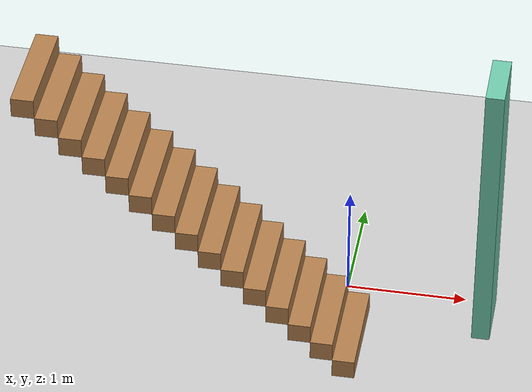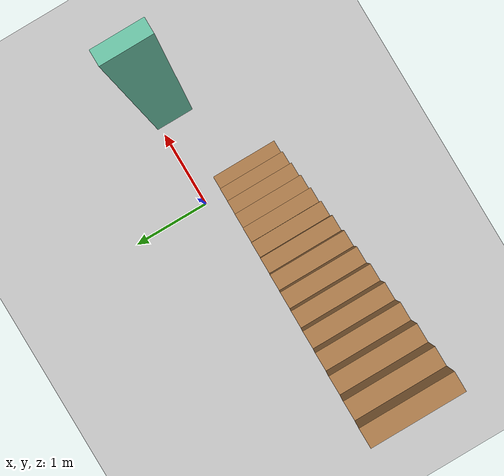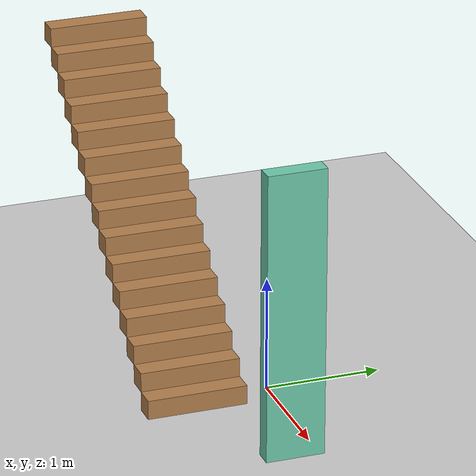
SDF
<sdf version="1.6">
 <world name="default">
  <model name="ground_plane">
   <static>1</static>
   <link name="link">
    <collision name="collision">
     <geometry><plane><normal>0 0 1</normal><size>100 100</size></plane></geometry>
     <surface><friction><ode><mu>100</mu><mu2>50</mu2></ode></friction></surface>
    </collision>
    <visual name="visual">
     <cast_shadows>0</cast_shadows>
     <geometry><plane><normal>0 0 1</normal><size>100 100</size></plane></geometry>
     <material>
      <script><uri>file://media/materials/scripts/gazebo.material</uri><name>Gazebo/Grey</name></script>
     </material>
    </visual>
   </link>
  </model>
  <model name="my_world">
   <link name="Stairs_3">
    <visual name="Stairs_3_Visual_0">
     <pose>-0.655687 -0.838968 0.083333 0 0 -1.5708</pose>
     <geometry><box><size>0.863121 0.182638 0.166667</size></box></geometry>
     <material>
      <script><uri>file://media/materials/scripts/gazebo.material</uri><name>Gazebo/Wood</name></script>
      <ambient>1 1 1 1</ambient>
      <diffuse>1 1 1 1</diffuse>
      <specular>0.2 0.2 0.2 1</specular>
      <emissive>0 0 0 1</emissive>
      <shader type="pixel"/>
     </material>
     <meta><layer>0</layer></meta>
    </visual>
    <visual name="Stairs_3_Visual_1">
     <pose>-0.838325 -0.838968 0.25 0 0 -1.5708</pose>
     <geometry><box><size>0.863121 0.182638 0.166667</size></box></geometry>
     <material>
      <script><uri>file://media/materials/scripts/gazebo.material</uri><name>Gazebo/Wood</name></script>
      <ambient>1 1 1 1</ambient>
      <diffuse>1 1 1 1</diffuse>
      <specular>0.2 0.2 0.2 1</specular>
      <emissive>0 0 0 1</emissive>
      <shader type="pixel"/>
     </material>
     <meta><layer>0</layer></meta>
    </visual>
    <visual name="Stairs_3_Visual_2">
     <pose>-1.02096 -0.838968 0.416667 0 0 -1.5708</pose>
     <geometry><box><size>0.863121 0.182638 0.166667</size></box></geometry>
     <material>
      <script><uri>file://media/materials/scripts/gazebo.material</uri><name>Gazebo/Wood</name></script>
      <ambient>1 1 1 1</ambient>
      <diffuse>1 1 1 1</diffuse>
      <specular>0.2 0.2 0.2 1</specular>
      <emissive>0 0 0 1</emissive>
      <shader type="pixel"/>
     </material>
     <meta><layer>0</layer></meta>
    </visual>
    <visual name="Stairs_3_Visual_8">
     <pose>-2.11679 -0.838967 1.41667 0 0 -1.5708</pose>
     <geometry><box><size>0.863121 0.182638 0.166667</size></box></geometry>
     <material>
      <script><uri>file://media/materials/scripts/gazebo.material</uri><name>Gazebo/Wood</name></script>
      <ambient>1 1 1 1</ambient>
      <diffuse>1 1 1 1</diffuse>
      <specular>0.2 0.2 0.2 1</specular>
      <emissive>0 0 0 1</emissive>
      <shader type="pixel"/>
     </material>
     <meta><layer>0</layer></meta>
    </visual>
    <visual name="Stairs_3_Visual_3">
     <pose>-1.2036 -0.838968 0.583333 0 0 -1.5708</pose>
     <geometry><box><size>0.863121 0.182638 0.166667</size></box></geometry>
     <material>
      <script><uri>file://media/materials/scripts/gazebo.material</uri><name>Gazebo/Wood</name></script>
      <ambient>1 1 1 1</ambient>
      <diffuse>1 1 1 1</diffuse>
      <specular>0.2 0.2 0.2 1</specular>
      <emissive>0 0 0 1</emissive>
      <shader type="pixel"/>
     </material>
     <meta><layer>0</layer></meta>
    </visual>
    <visual name="Stairs_3_Visual_4">
     <pose>-1.38624 -0.838968 0.75 0 0 -1.5708</pose>
     <geometry><box><size>0.863121 0.182638 0.166667</size></box></geometry>
     <material>
      <script><uri>file://media/materials/scripts/gazebo.material</uri><name>Gazebo/Wood</name></script>
      <ambient>1 1 1 1</ambient>
      <diffuse>1 1 1 1</diffuse>
      <specular>0.2 0.2 0.2 1</specular>
      <emissive>0 0 0 1</emissive>
      <shader type="pixel"/>
     </material>
     <meta><layer>0</layer></meta>
    </visual>
    <visual name="Stairs_3_Visual_5">
     <pose>-1.56888 -0.838968 0.916667 0 0 -1.5708</pose>
     <geometry><box><size>0.863121 0.182638 0.166667</size></box></geometry>
     <material>
      <script><uri>file://media/materials/scripts/gazebo.material</uri><name>Gazebo/Wood</name></script>
      <ambient>1 1 1 1</ambient>
      <diffuse>1 1 1 1</diffuse>
      <specular>0.2 0.2 0.2 1</specular>
      <emissive>0 0 0 1</emissive>
      <shader type="pixel"/>
     </material>
     <meta><layer>0</layer></meta>
    </visual>
    <visual name="Stairs_3_Visual_6">
     <pose>-1.75151 -0.838968 1.08333 0 0 -1.5708</pose>
     <geometry><box><size>0.863121 0.182638 0.166667</size></box></geometry>
     <material>
      <script><uri>file://media/materials/scripts/gazebo.material</uri><name>Gazebo/Wood</name></script>
      <ambient>1 1 1 1</ambient>
      <diffuse>1 1 1 1</diffuse>
      <specular>0.2 0.2 0.2 1</specular>
      <emissive>0 0 0 1</emissive>
      <shader type="pixel"/>
     </material>
     <meta><layer>0</layer></meta>
    </visual>
    <visual name="Stairs_3_Visual_7">
     <pose>-1.93415 -0.838968 1.25 0 0 -1.5708</pose>
     <geometry><box><size>0.863121 0.182638 0.166667</size></box></geometry>
     <material>
      <script><uri>file://media/materials/scripts/gazebo.material</uri><name>Gazebo/Wood</name></script>
      <ambient>1 1 1 1</ambient>
      <diffuse>1 1 1 1</diffuse>
      <specular>0.2 0.2 0.2 1</specular>
      <emissive>0 0 0 1</emissive>
      <shader type="pixel"/>
     </material>
     <meta><layer>0</layer></meta>
    </visual>
    <visual name="Stairs_3_Visual_9">
     <pose>-2.29942 -0.838967 1.58333 0 0 -1.5708</pose>
     <geometry><box><size>0.863121 0.182638 0.166667</size></box></geometry>
     <material>
      <script><uri>file://media/materials/scripts/gazebo.material</uri><name>Gazebo/Wood</name></script>
      <ambient>1 1 1 1</ambient>
      <diffuse>1 1 1 1</diffuse>
      <specular>0.2 0.2 0.2 1</specular>
      <emissive>0 0 0 1</emissive>
      <shader type="pixel"/>
     </material>
     <meta><layer>0</layer></meta>
    </visual>
    <visual name="Stairs_3_Visual_10">
     <pose>-2.48206 -0.838967 1.75 0 0 -1.5708</pose>
     <geometry><box><size>0.863121 0.182638 0.166667</size></box></geometry>
     <material>
      <script><uri>file://media/materials/scripts/gazebo.material</uri><name>Gazebo/Wood</name></script>
      <ambient>1 1 1 1</ambient>
      <diffuse>1 1 1 1</diffuse>
      <specular>0.2 0.2 0.2 1</specular>
      <emissive>0 0 0 1</emissive>
      <shader type="pixel"/>
     </material>
     <meta><layer>0</layer></meta>
    </visual>
    <visual name="Stairs_3_Visual_11">
     <pose>-2.6647 -0.838967 1.91667 0 0 -1.5708</pose>
     <geometry><box><size>0.863121 0.182638 0.166667</size></box></geometry>
     <material>
      <script><uri>file://media/materials/scripts/gazebo.material</uri><name>Gazebo/Wood</name></script>
      <ambient>1 1 1 1</ambient>
      <diffuse>1 1 1 1</diffuse>
      <specular>0.2 0.2 0.2 1</specular>
      <emissive>0 0 0 1</emissive>
      <shader type="pixel"/>
     </material>
     <meta><layer>0</layer></meta>
    </visual>
    <visual name="Stairs_3_Visual_12">
     <pose>-2.84734 -0.838967 2.08333 0 0 -1.5708</pose>
     <geometry><box><size>0.863121 0.182638 0.166667</size></box></geometry>
     <material>
      <script><uri>file://media/materials/scripts/gazebo.material</uri><name>Gazebo/Wood</name></script>
      <ambient>1 1 1 1</ambient>
      <diffuse>1 1 1 1</diffuse>
      <specular>0.2 0.2 0.2 1</specular>
      <emissive>0 0 0 1</emissive>
      <shader type="pixel"/>
     </material>
     <meta><layer>0</layer></meta>
    </visual>
    <visual name="Stairs_3_Visual_13">
     <pose>-3.02997 -0.838967 2.25 0 0 -1.5708</pose>
     <geometry><box><size>0.863121 0.182638 0.166667</size></box></geometry>
     <material>
      <script><uri>file://media/materials/scripts/gazebo.material</uri><name>Gazebo/Wood</name></script>
      <ambient>1 1 1 1</ambient>
      <diffuse>1 1 1 1</diffuse>
      <specular>0.2 0.2 0.2 1</specular>
      <emissive>0 0 0 1</emissive>
      <shader type="pixel"/>
     </material>
     <meta><layer>0</layer></meta>
    </visual>
    <visual name="Stairs_3_Visual_14">
     <pose>-3.21261 -0.838967 2.41667 0 0 -1.5708</pose>
     <geometry><box><size>0.863121 0.182638 0.166667</size></box></geometry>
     <material>
      <script><uri>file://media/materials/scripts/gazebo.material</uri><name>Gazebo/Wood</name></script>
      <ambient>1 1 1 1</ambient>
      <diffuse>1 1 1 1</diffuse>
      <specular>0.2 0.2 0.2 1</specular>
      <emissive>0 0 0 1</emissive>
      <shader type="pixel"/>
     </material>
     <meta><layer>0</layer></meta>
    </visual>
    <collision name="Stairs_3_Collision_13">
     <pose>-3.02997 -0.838967 2.25 0 0 -1.5708</pose>
     <geometry><box><size>0.863121 0.182638 0.166667</size></box></geometry>
     <surface>
      <friction>
       <ode><mu>1</mu><mu2>1</mu2><fdir1>0 0 0</fdir1><slip1>0</slip1><slip2>0</slip2></ode>
       <torsional>
        <coefficient>1</coefficient>
        <patch_radius>0</patch_radius>
        <surface_radius>0</surface_radius>
        <use_patch_radius>1</use_patch_radius>
        <ode><slip>0</slip></ode>
       </torsional>
      </friction>
      <bounce><restitution_coefficient>0</restitution_coefficient><threshold>1e+06</threshold></bounce>
      <contact>
       <collide_without_contact>0</collide_without_contact>
       <collide_without_contact_bitmask>1</collide_without_contact_bitmask>
       <collide_bitmask>1</collide_bitmask>
       <ode>
        <soft_cfm>0</soft_cfm>
        <soft_erp>0.2</soft_erp>
        <kp>1e+13</kp>
        <kd>1</kd>
        <max_vel>0.01</max_vel>
        <min_depth>0</min_depth>
       </ode>
       <bullet>
        <split_impulse>1</split_impulse>
        <split_impulse_penetration_threshold>-0.01</split_impulse_penetration_threshold>
        <soft_cfm>0</soft_cfm>
        <soft_erp>0.2</soft_erp>
        <kp>1e+13</kp>
        <kd>1</kd>
       </bullet>
      </contact>
     </surface>
    </collision>
    <collision name="Stairs_3_Collision_2">
     <pose>-1.02096 -0.838968 0.416667 0 0 -1.5708</pose>
     <geometry><box><size>0.863121 0.182638 0.166667</size></box></geometry>
     <surface>
      <friction>
       <ode><mu>1</mu><mu2>1</mu2><fdir1>0 0 0</fdir1><slip1>0</slip1><slip2>0</slip2></ode>
       <torsional>
        <coefficient>1</coefficient>
        <patch_radius>0</patch_radius>
        <surface_radius>0</surface_radius>
        <use_patch_radius>1</use_patch_radius>
        <ode><slip>0</slip></ode>
       </torsional>
      </friction>
      <bounce><restitution_coefficient>0</restitution_coefficient><threshold>1e+06</threshold></bounce>
      <contact>
       <collide_without_contact>0</collide_without_contact>
       <collide_without_contact_bitmask>1</collide_without_contact_bitmask>
       <collide_bitmask>1</collide_bitmask>
       <ode>
        <soft_cfm>0</soft_cfm>
        <soft_erp>0.2</soft_erp>
        <kp>1e+13</kp>
        <kd>1</kd>
        <max_vel>0.01</max_vel>
        <min_depth>0</min_depth>
       </ode>
       <bullet>
        <split_impulse>1</split_impulse>
        <split_impulse_penetration_threshold>-0.01</split_impulse_penetration_threshold>
        <soft_cfm>0</soft_cfm>
        <soft_erp>0.2</soft_erp>
        <kp>1e+13</kp>
        <kd>1</kd>
       </bullet>
      </contact>
     </surface>
    </collision>
    <collision name="Stairs_3_Collision_0">
     <pose>-0.655687 -0.838968 0.083333 0 0 -1.5708</pose>
     <geometry><box><size>0.863121 0.182638 0.166667</size></box></geometry>
     <surface>
      <friction>
       <ode><mu>1</mu><mu2>1</mu2><fdir1>0 0 0</fdir1><slip1>0</slip1><slip2>0</slip2></ode>
       <torsional>
        <coefficient>1</coefficient>
        <patch_radius>0</patch_radius>
        <surface_radius>0</surface_radius>
        <use_patch_radius>1</use_patch_radius>
        <ode><slip>0</slip></ode>
       </torsional>
      </friction>
      <bounce><restitution_coefficient>0</restitution_coefficient><threshold>1e+06</threshold></bounce>
      <contact>
       <collide_without_contact>0</collide_without_contact>
       <collide_without_contact_bitmask>1</collide_without_contact_bitmask>
       <collide_bitmask>1</collide_bitmask>
       <ode>
        <soft_cfm>0</soft_cfm>
        <soft_erp>0.2</soft_erp>
        <kp>1e+13</kp>
        <kd>1</kd>
        <max_vel>0.01</max_vel>
        <min_depth>0</min_depth>
       </ode>
       <bullet>
        <split_impulse>1</split_impulse>
        <split_impulse_penetration_threshold>-0.01</split_impulse_penetration_threshold>
        <soft_cfm>0</soft_cfm>
        <soft_erp>0.2</soft_erp>
        <kp>1e+13</kp>
        <kd>1</kd>
       </bullet>
      </contact>
     </surface>
    </collision>
    <collision name="Stairs_3_Collision_1">
     <pose>-0.838325 -0.838968 0.25 0 0 -1.5708</pose>
     <geometry><box><size>0.863121 0.182638 0.166667</size></box></geometry>
     <surface>
      <friction>
       <ode><mu>1</mu><mu2>1</mu2><fdir1>0 0 0</fdir1><slip1>0</slip1><slip2>0</slip2></ode>
       <torsional>
        <coefficient>1</coefficient>
        <patch_radius>0</patch_radius>
        <surface_radius>0</surface_radius>
        <use_patch_radius>1</use_patch_radius>
        <ode><slip>0</slip></ode>
       </torsional>
      </friction>
      <bounce><restitution_coefficient>0</restitution_coefficient><threshold>1e+06</threshold></bounce>
      <contact>
       <collide_without_contact>0</collide_without_contact>
       <collide_without_contact_bitmask>1</collide_without_contact_bitmask>
       <collide_bitmask>1</collide_bitmask>
       <ode>
        <soft_cfm>0</soft_cfm>
        <soft_erp>0.2</soft_erp>
        <kp>1e+13</kp>
        <kd>1</kd>
        <max_vel>0.01</max_vel>
        <min_depth>0</min_depth>
       </ode>
       <bullet>
        <split_impulse>1</split_impulse>
        <split_impulse_penetration_threshold>-0.01</split_impulse_penetration_threshold>
        <soft_cfm>0</soft_cfm>
        <soft_erp>0.2</soft_erp>
        <kp>1e+13</kp>
        <kd>1</kd>
       </bullet>
      </contact>
     </surface>
    </collision>
    <collision name="Stairs_3_Collision_3">
     <pose>-1.2036 -0.838968 0.583333 0 0 -1.5708</pose>
     <geometry><box><size>0.863121 0.182638 0.166667</size></box></geometry>
     <surface>
      <friction>
       <ode><mu>1</mu><mu2>1</mu2><fdir1>0 0 0</fdir1><slip1>0</slip1><slip2>0</slip2></ode>
       <torsional>
        <coefficient>1</coefficient>
        <patch_radius>0</patch_radius>
        <surface_radius>0</surface_radius>
        <use_patch_radius>1</use_patch_radius>
        <ode><slip>0</slip></ode>
       </torsional>
      </friction>
      <bounce><restitution_coefficient>0</restitution_coefficient><threshold>1e+06</threshold></bounce>
      <contact>
       <collide_without_contact>0</collide_without_contact>
       <collide_without_contact_bitmask>1</collide_without_contact_bitmask>
       <collide_bitmask>1</collide_bitmask>
       <ode>
        <soft_cfm>0</soft_cfm>
        <soft_erp>0.2</soft_erp>
        <kp>1e+13</kp>
        <kd>1</kd>
        <max_vel>0.01</max_vel>
        <min_depth>0</min_depth>
       </ode>
       <bullet>
        <split_impulse>1</split_impulse>
        <split_impulse_penetration_threshold>-0.01</split_impulse_penetration_threshold>
        <soft_cfm>0</soft_cfm>
        <soft_erp>0.2</soft_erp>
        <kp>1e+13</kp>
        <kd>1</kd>
       </bullet>
      </contact>
     </surface>
    </collision>
    <collision name="Stairs_3_Collision_4">
     <pose>-1.38624 -0.838968 0.75 0 0 -1.5708</pose>
     <geometry><box><size>0.863121 0.182638 0.166667</size></box></geometry>
     <surface>
      <friction>
       <ode><mu>1</mu><mu2>1</mu2><fdir1>0 0 0</fdir1><slip1>0</slip1><slip2>0</slip2></ode>
       <torsional>
        <coefficient>1</coefficient>
        <patch_radius>0</patch_radius>
        <surface_radius>0</surface_radius>
        <use_patch_radius>1</use_patch_radius>
        <ode><slip>0</slip></ode>
       </torsional>
      </friction>
      <bounce><restitution_coefficient>0</restitution_coefficient><threshold>1e+06</threshold></bounce>
      <contact>
       <collide_without_contact>0</collide_without_contact>
       <collide_without_contact_bitmask>1</collide_without_contact_bitmask>
       <collide_bitmask>1</collide_bitmask>
       <ode>
        <soft_cfm>0</soft_cfm>
        <soft_erp>0.2</soft_erp>
        <kp>1e+13</kp>
        <kd>1</kd>
        <max_vel>0.01</max_vel>
        <min_depth>0</min_depth>
       </ode>
       <bullet>
        <split_impulse>1</split_impulse>
        <split_impulse_penetration_threshold>-0.01</split_impulse_penetration_threshold>
        <soft_cfm>0</soft_cfm>
        <soft_erp>0.2</soft_erp>
        <kp>1e+13</kp>
        <kd>1</kd>
       </bullet>
      </contact>
     </surface>
    </collision>
    <collision name="Stairs_3_Collision_5">
     <pose>-1.56888 -0.838968 0.916667 0 0 -1.5708</pose>
     <geometry><box><size>0.863121 0.182638 0.166667</size></box></geometry>
     <surface>
      <friction>
       <ode><mu>1</mu><mu2>1</mu2><fdir1>0 0 0</fdir1><slip1>0</slip1><slip2>0</slip2></ode>
       <torsional>
        <coefficient>1</coefficient>
        <patch_radius>0</patch_radius>
        <surface_radius>0</surface_radius>
        <use_patch_radius>1</use_patch_radius>
        <ode><slip>0</slip></ode>
       </torsional>
      </friction>
      <bounce><restitution_coefficient>0</restitution_coefficient><threshold>1e+06</threshold></bounce>
      <contact>
       <collide_without_contact>0</collide_without_contact>
       <collide_without_contact_bitmask>1</collide_without_contact_bitmask>
       <collide_bitmask>1</collide_bitmask>
       <ode>
        <soft_cfm>0</soft_cfm>
        <soft_erp>0.2</soft_erp>
        <kp>1e+13</kp>
        <kd>1</kd>
        <max_vel>0.01</max_vel>
        <min_depth>0</min_depth>
       </ode>
       <bullet>
        <split_impulse>1</split_impulse>
        <split_impulse_penetration_threshold>-0.01</split_impulse_penetration_threshold>
        <soft_cfm>0</soft_cfm>
        <soft_erp>0.2</soft_erp>
        <kp>1e+13</kp>
        <kd>1</kd>
       </bullet>
      </contact>
     </surface>
    </collision>
    <collision name="Stairs_3_Collision_7">
     <pose>-1.93415 -0.838968 1.25 0 0 -1.5708</pose>
     <geometry><box><size>0.863121 0.182638 0.166667</size></box></geometry>
     <surface>
      <friction>
       <ode><mu>1</mu><mu2>1</mu2><fdir1>0 0 0</fdir1><slip1>0</slip1><slip2>0</slip2></ode>
       <torsional>
        <coefficient>1</coefficient>
        <patch_radius>0</patch_radius>
        <surface_radius>0</surface_radius>
        <use_patch_radius>1</use_patch_radius>
        <ode><slip>0</slip></ode>
       </torsional>
      </friction>
      <bounce><restitution_coefficient>0</restitution_coefficient><threshold>1e+06</threshold></bounce>
      <contact>
       <collide_without_contact>0</collide_without_contact>
       <collide_without_contact_bitmask>1</collide_without_contact_bitmask>
       <collide_bitmask>1</collide_bitmask>
       <ode>
        <soft_cfm>0</soft_cfm>
        <soft_erp>0.2</soft_erp>
        <kp>1e+13</kp>
        <kd>1</kd>
        <max_vel>0.01</max_vel>
        <min_depth>0</min_depth>
       </ode>
       <bullet>
        <split_impulse>1</split_impulse>
        <split_impulse_penetration_threshold>-0.01</split_impulse_penetration_threshold>
        <soft_cfm>0</soft_cfm>
        <soft_erp>0.2</soft_erp>
        <kp>1e+13</kp>
        <kd>1</kd>
       </bullet>
      </contact>
     </surface>
    </collision>
    <collision name="Stairs_3_Collision_6">
     <pose>-1.75151 -0.838968 1.08333 0 0 -1.5708</pose>
     <geometry><box><size>0.863121 0.182638 0.166667</size></box></geometry>
     <surface>
      <friction>
       <ode><mu>1</mu><mu2>1</mu2><fdir1>0 0 0</fdir1><slip1>0</slip1><slip2>0</slip2></ode>
       <torsional>
        <coefficient>1</coefficient>
        <patch_radius>0</patch_radius>
        <surface_radius>0</surface_radius>
        <use_patch_radius>1</use_patch_radius>
        <ode><slip>0</slip></ode>
       </torsional>
      </friction>
      <bounce><restitution_coefficient>0</restitution_coefficient><threshold>1e+06</threshold></bounce>
      <contact>
       <collide_without_contact>0</collide_without_contact>
       <collide_without_contact_bitmask>1</collide_without_contact_bitmask>
       <collide_bitmask>1</collide_bitmask>
       <ode>
        <soft_cfm>0</soft_cfm>
        <soft_erp>0.2</soft_erp>
        <kp>1e+13</kp>
        <kd>1</kd>
        <max_vel>0.01</max_vel>
        <min_depth>0</min_depth>
       </ode>
       <bullet>
        <split_impulse>1</split_impulse>
        <split_impulse_penetration_threshold>-0.01</split_impulse_penetration_threshold>
        <soft_cfm>0</soft_cfm>
        <soft_erp>0.2</soft_erp>
        <kp>1e+13</kp>
        <kd>1</kd>
       </bullet>
      </contact>
     </surface>
    </collision>
    <collision name="Stairs_3_Collision_8">
     <pose>-2.11679 -0.838967 1.41667 0 0 -1.5708</pose>
     <geometry><box><size>0.863121 0.182638 0.166667</size></box></geometry>
     <surface>
      <friction>
       <ode><mu>1</mu><mu2>1</mu2><fdir1>0 0 0</fdir1><slip1>0</slip1><slip2>0</slip2></ode>
       <torsional>
        <coefficient>1</coefficient>
        <patch_radius>0</patch_radius>
        <surface_radius>0</surface_radius>
        <use_patch_radius>1</use_patch_radius>
        <ode><slip>0</slip></ode>
       </torsional>
      </friction>
      <bounce><restitution_coefficient>0</restitution_coefficient><threshold>1e+06</threshold></bounce>
      <contact>
       <collide_without_contact>0</collide_without_contact>
       <collide_without_contact_bitmask>1</collide_without_contact_bitmask>
       <collide_bitmask>1</collide_bitmask>
       <ode>
        <soft_cfm>0</soft_cfm>
        <soft_erp>0.2</soft_erp>
        <kp>1e+13</kp>
        <kd>1</kd>
        <max_vel>0.01</max_vel>
        <min_depth>0</min_depth>
       </ode>
       <bullet>
        <split_impulse>1</split_impulse>
        <split_impulse_penetration_threshold>-0.01</split_impulse_penetration_threshold>
        <soft_cfm>0</soft_cfm>
        <soft_erp>0.2</soft_erp>
        <kp>1e+13</kp>
        <kd>1</kd>
       </bullet>
      </contact>
     </surface>
    </collision>
    <collision name="Stairs_3_Collision_9">
     <pose>-2.29942 -0.838967 1.58333 0 0 -1.5708</pose>
     <geometry><box><size>0.863121 0.182638 0.166667</size></box></geometry>
     <surface>
      <friction>
       <ode><mu>1</mu><mu2>1</mu2><fdir1>0 0 0</fdir1><slip1>0</slip1><slip2>0</slip2></ode>
       <torsional>
        <coefficient>1</coefficient>
        <patch_radius>0</patch_radius>
        <surface_radius>0</surface_radius>
        <use_patch_radius>1</use_patch_radius>
        <ode><slip>0</slip></ode>
       </torsional>
      </friction>
      <bounce><restitution_coefficient>0</restitution_coefficient><threshold>1e+06</threshold></bounce>
      <contact>
       <collide_without_contact>0</collide_without_contact>
       <collide_without_contact_bitmask>1</collide_without_contact_bitmask>
       <collide_bitmask>1</collide_bitmask>
       <ode>
        <soft_cfm>0</soft_cfm>
        <soft_erp>0.2</soft_erp>
        <kp>1e+13</kp>
        <kd>1</kd>
        <max_vel>0.01</max_vel>
        <min_depth>0</min_depth>
       </ode>
       <bullet>
        <split_impulse>1</split_impulse>
        <split_impulse_penetration_threshold>-0.01</split_impulse_penetration_threshold>
        <soft_cfm>0</soft_cfm>
        <soft_erp>0.2</soft_erp>
        <kp>1e+13</kp>
        <kd>1</kd>
       </bullet>
      </contact>
     </surface>
    </collision>
    <collision name="Stairs_3_Collision_11">
     <pose>-2.6647 -0.838967 1.91667 0 0 -1.5708</pose>
     <geometry><box><size>0.863121 0.182638 0.166667</size></box></geometry>
     <surface>
      <friction>
       <ode><mu>1</mu><mu2>1</mu2><fdir1>0 0 0</fdir1><slip1>0</slip1><slip2>0</slip2></ode>
       <torsional>
        <coefficient>1</coefficient>
        <patch_radius>0</patch_radius>
        <surface_radius>0</surface_radius>
        <use_patch_radius>1</use_patch_radius>
        <ode><slip>0</slip></ode>
       </torsional>
      </friction>
      <bounce><restitution_coefficient>0</restitution_coefficient><threshold>1e+06</threshold></bounce>
      <contact>
       <collide_without_contact>0</collide_without_contact>
       <collide_without_contact_bitmask>1</collide_without_contact_bitmask>
       <collide_bitmask>1</collide_bitmask>
       <ode>
        <soft_cfm>0</soft_cfm>
        <soft_erp>0.2</soft_erp>
        <kp>1e+13</kp>
        <kd>1</kd>
        <max_vel>0.01</max_vel>
        <min_depth>0</min_depth>
       </ode>
       <bullet>
        <split_impulse>1</split_impulse>
        <split_impulse_penetration_threshold>-0.01</split_impulse_penetration_threshold>
        <soft_cfm>0</soft_cfm>
        <soft_erp>0.2</soft_erp>
        <kp>1e+13</kp>
        <kd>1</kd>
       </bullet>
      </contact>
     </surface>
    </collision>
    <collision name="Stairs_3_Collision_12">
     <pose>-2.84734 -0.838967 2.08333 0 0 -1.5708</pose>
     <geometry><box><size>0.863121 0.182638 0.166667</size></box></geometry>
     <surface>
      <friction>
       <ode><mu>1</mu><mu2>1</mu2><fdir1>0 0 0</fdir1><slip1>0</slip1><slip2>0</slip2></ode>
       <torsional>
        <coefficient>1</coefficient>
        <patch_radius>0</patch_radius>
        <surface_radius>0</surface_radius>
        <use_patch_radius>1</use_patch_radius>
        <ode><slip>0</slip></ode>
       </torsional>
      </friction>
      <bounce><restitution_coefficient>0</restitution_coefficient><threshold>1e+06</threshold></bounce>
      <contact>
       <collide_without_contact>0</collide_without_contact>
       <collide_without_contact_bitmask>1</collide_without_contact_bitmask>
       <collide_bitmask>1</collide_bitmask>
       <ode>
        <soft_cfm>0</soft_cfm>
        <soft_erp>0.2</soft_erp>
        <kp>1e+13</kp>
        <kd>1</kd>
        <max_vel>0.01</max_vel>
        <min_depth>0</min_depth>
       </ode>
       <bullet>
        <split_impulse>1</split_impulse>
        <split_impulse_penetration_threshold>-0.01</split_impulse_penetration_threshold>
        <soft_cfm>0</soft_cfm>
        <soft_erp>0.2</soft_erp>
        <kp>1e+13</kp>
        <kd>1</kd>
       </bullet>
      </contact>
     </surface>
    </collision>
    <collision name="Stairs_3_Collision_10">
     <pose>-2.48206 -0.838967 1.75 0 0 -1.5708</pose>
     <geometry><box><size>0.863121 0.182638 0.166667</size></box></geometry>
     <surface>
      <friction>
       <ode><mu>1</mu><mu2>1</mu2><fdir1>0 0 0</fdir1><slip1>0</slip1><slip2>0</slip2></ode>
       <torsional>
        <coefficient>1</coefficient>
        <patch_radius>0</patch_radius>
        <surface_radius>0</surface_radius>
        <use_patch_radius>1</use_patch_radius>
        <ode><slip>0</slip></ode>
       </torsional>
      </friction>
      <bounce><restitution_coefficient>0</restitution_coefficient><threshold>1e+06</threshold></bounce>
      <contact>
       <collide_without_contact>0</collide_without_contact>
       <collide_without_contact_bitmask>1</collide_without_contact_bitmask>
       <collide_bitmask>1</collide_bitmask>
       <ode>
        <soft_cfm>0</soft_cfm>
        <soft_erp>0.2</soft_erp>
        <kp>1e+13</kp>
        <kd>1</kd>
        <max_vel>0.01</max_vel>
        <min_depth>0</min_depth>
       </ode>
       <bullet>
        <split_impulse>1</split_impulse>
        <split_impulse_penetration_threshold>-0.01</split_impulse_penetration_threshold>
        <soft_cfm>0</soft_cfm>
        <soft_erp>0.2</soft_erp>
        <kp>1e+13</kp>
        <kd>1</kd>
       </bullet>
      </contact>
     </surface>
    </collision>
    <collision name="Stairs_3_Collision_14">
     <pose>-3.21261 -0.838967 2.41667 0 0 -1.5708</pose>
     <geometry><box><size>0.863121 0.182638 0.166667</size></box></geometry>
     <surface>
      <friction>
       <ode><mu>1</mu><mu2>1</mu2><fdir1>0 0 0</fdir1><slip1>0</slip1><slip2>0</slip2></ode>
       <torsional>
        <coefficient>1</coefficient>
        <patch_radius>0</patch_radius>
        <surface_radius>0</surface_radius>
        <use_patch_radius>1</use_patch_radius>
        <ode><slip>0</slip></ode>
       </torsional>
      </friction>
      <bounce><restitution_coefficient>0</restitution_coefficient><threshold>1e+06</threshold></bounce>
      <contact>
       <collide_without_contact>0</collide_without_contact>
       <collide_without_contact_bitmask>1</collide_without_contact_bitmask>
       <collide_bitmask>1</collide_bitmask>
       <ode>
        <soft_cfm>0</soft_cfm>
        <soft_erp>0.2</soft_erp>
        <kp>1e+13</kp>
        <kd>1</kd>
        <max_vel>0.01</max_vel>
        <min_depth>0</min_depth>
       </ode>
       <bullet>
        <split_impulse>1</split_impulse>
        <split_impulse_penetration_threshold>-0.01</split_impulse_penetration_threshold>
        <soft_cfm>0</soft_cfm>
        <soft_erp>0.2</soft_erp>
        <kp>1e+13</kp>
        <kd>1</kd>
       </bullet>
      </contact>
     </surface>
    </collision>
   </link>
   <link name="Wall_29">
    <pose>0.392789 -0.367596 0 0 0 -1.5708</pose>
    <visual name="Wall_29_Visual">
     <pose>0 0 1.25 0 -0 0</pose>
     <geometry><box><size>0.5 0.15 2.5</size></box></geometry>
     <material>
      <script><uri>file://media/materials/scripts/gazebo.material</uri><name>Gazebo/Grey</name></script>
      <ambient>0.435294 0.796078 0.67451 1</ambient>
      <diffuse>0.7 0.7 0.7 1</diffuse>
      <specular>0.01 0.01 0.01 1</specular>
      <emissive>0 0 0 1</emissive>
      <shader type="pixel"/>
     </material>
     <meta><layer>0</layer></meta>
    </visual>
    <collision name="Wall_29_Collision">
     <pose>0 0 1.25 0 -0 0</pose>
     <geometry><box><size>0.5 0.15 2.5</size></box></geometry>
     <surface>
      <friction>
       <ode><mu>1</mu><mu2>1</mu2><fdir1>0 0 0</fdir1><slip1>0</slip1><slip2>0</slip2></ode>
       <torsional>
        <coefficient>1</coefficient>
        <patch_radius>0</patch_radius>
        <surface_radius>0</surface_radius>
        <use_patch_radius>1</use_patch_radius>
        <ode><slip>0</slip></ode>
       </torsional>
      </friction>
      <bounce><restitution_coefficient>0</restitution_coefficient><threshold>1e+06</threshold></bounce>
      <contact>
       <collide_without_contact>0</collide_without_contact>
       <collide_without_contact_bitmask>1</collide_without_contact_bitmask>
       <collide_bitmask>1</collide_bitmask>
       <ode>
        <soft_cfm>0</soft_cfm>
        <soft_erp>0.2</soft_erp>
        <kp>1e+13</kp>
        <kd>1</kd>
        <max_vel>0.01</max_vel>
        <min_depth>0</min_depth>
       </ode>
       <bullet>
        <split_impulse>1</split_impulse>
        <split_impulse_penetration_threshold>-0.01</split_impulse_penetration_threshold>
        <soft_cfm>0</soft_cfm>
        <soft_erp>0.2</soft_erp>
        <kp>1e+13</kp>
        <kd>1</kd>
       </bullet>
      </contact>
     </surface>
    </collision>
   </link>
   <static>1</static>
   <pose>0.782828 0.15688 0 0 -0 0</pose>
  </model>
 </world>
</sdf>
